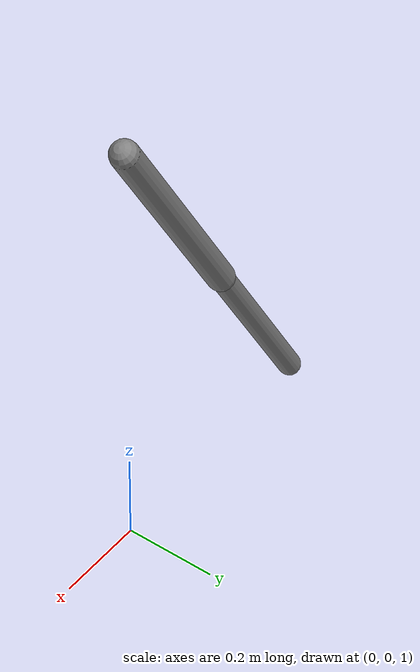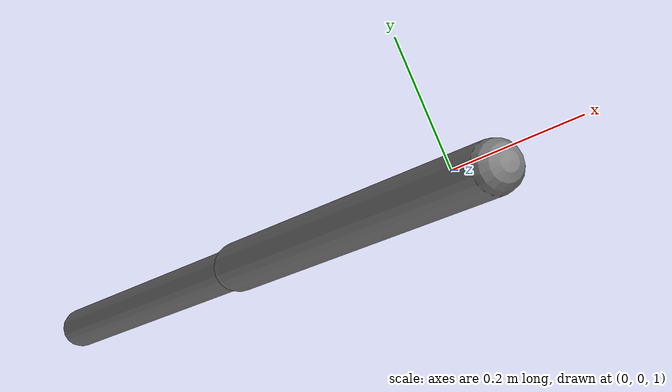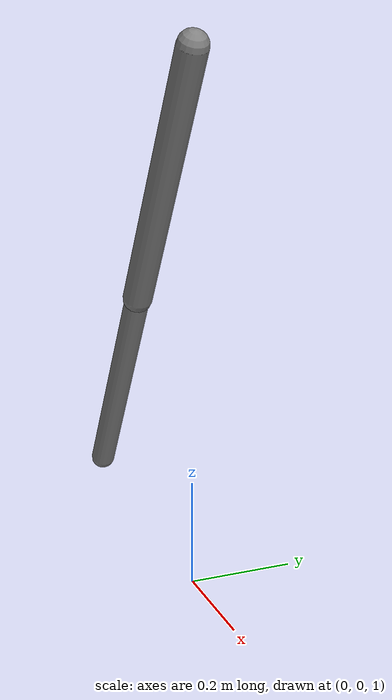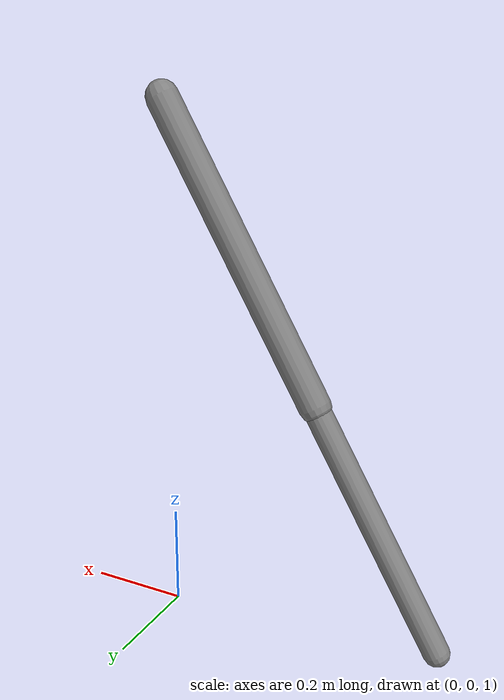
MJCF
<!-- Copyright 2026 -- CONTRIBUTORS. See LICENSE. -->
<!-- Two capsules on hinges, one below the other: chaotic once released. -->
<mujoco model="double pendulum">
  <option timestep="0.001"/>
  <worldbody>
    <body name="upper" pos="0 0 2" euler="0 30 0">
      <joint name="shoulder" axis="0 1 0"/>
      <geom name="upper" type="capsule" fromto="0 0 0 0 0 -0.6" size="0.03" density="800"/>
      <body name="lower" pos="0 0 -0.6">
        <joint name="elbow" axis="0 1 0" pos="0 0 0"/>
        <geom name="lower" type="capsule" fromto="0 0 0 0 0 -0.5" size="0.025" mass="0.7"/>
      </body>
    </body>
  </worldbody>
</mujoco>
